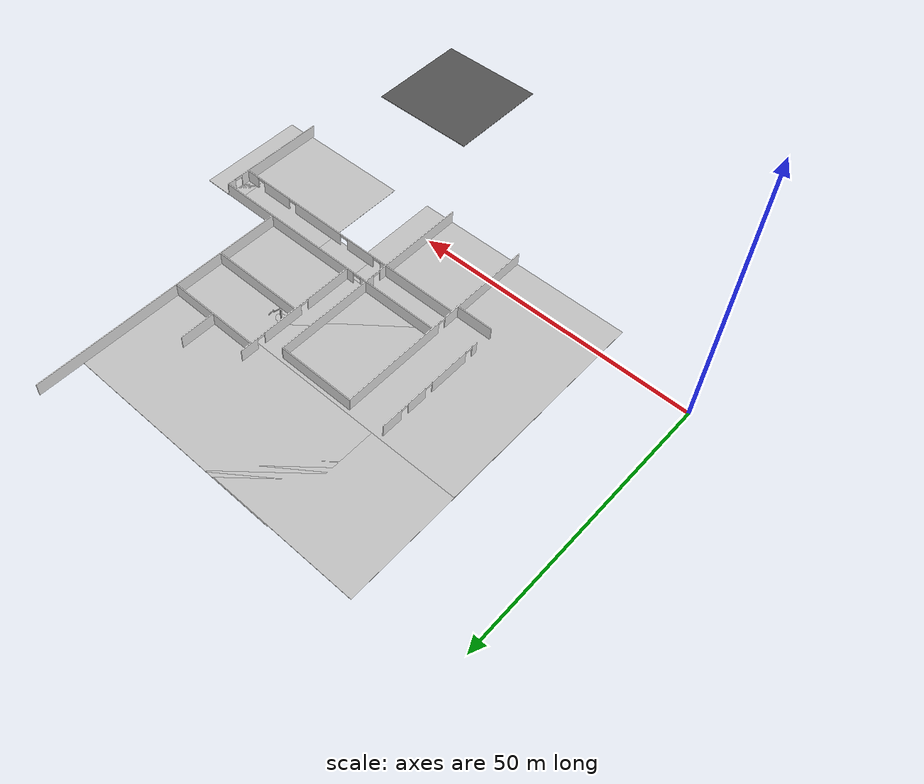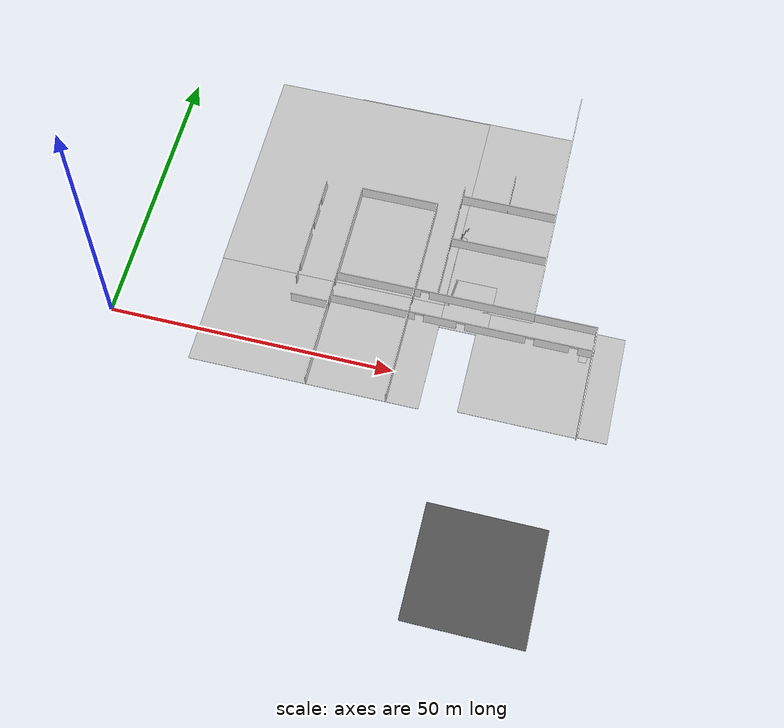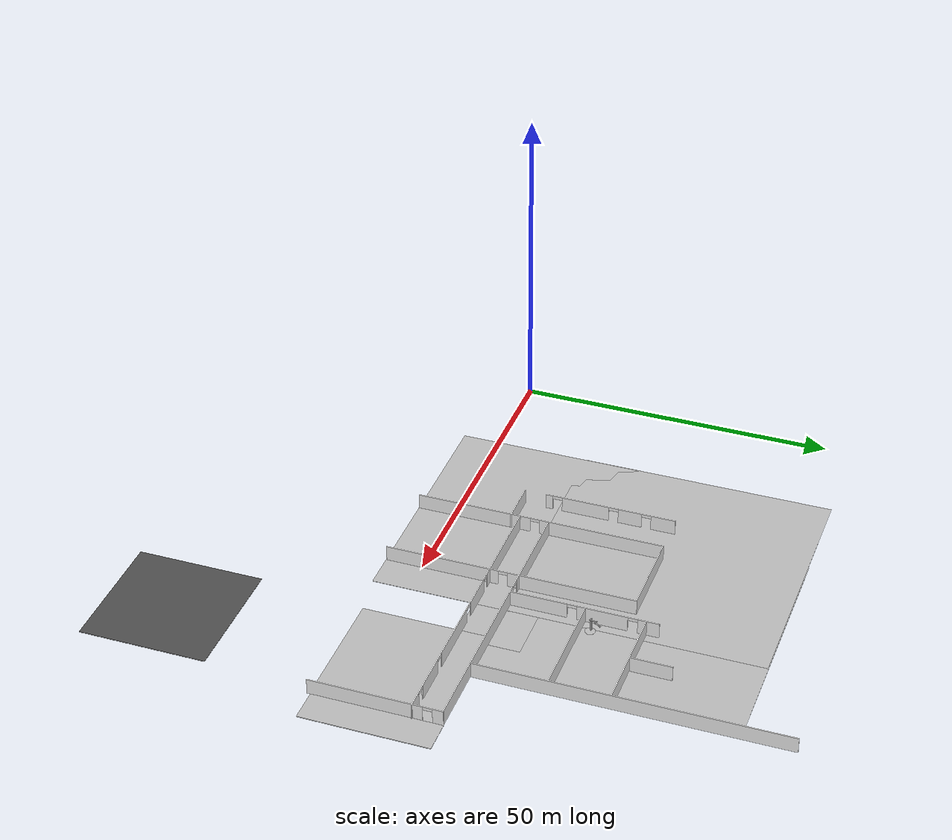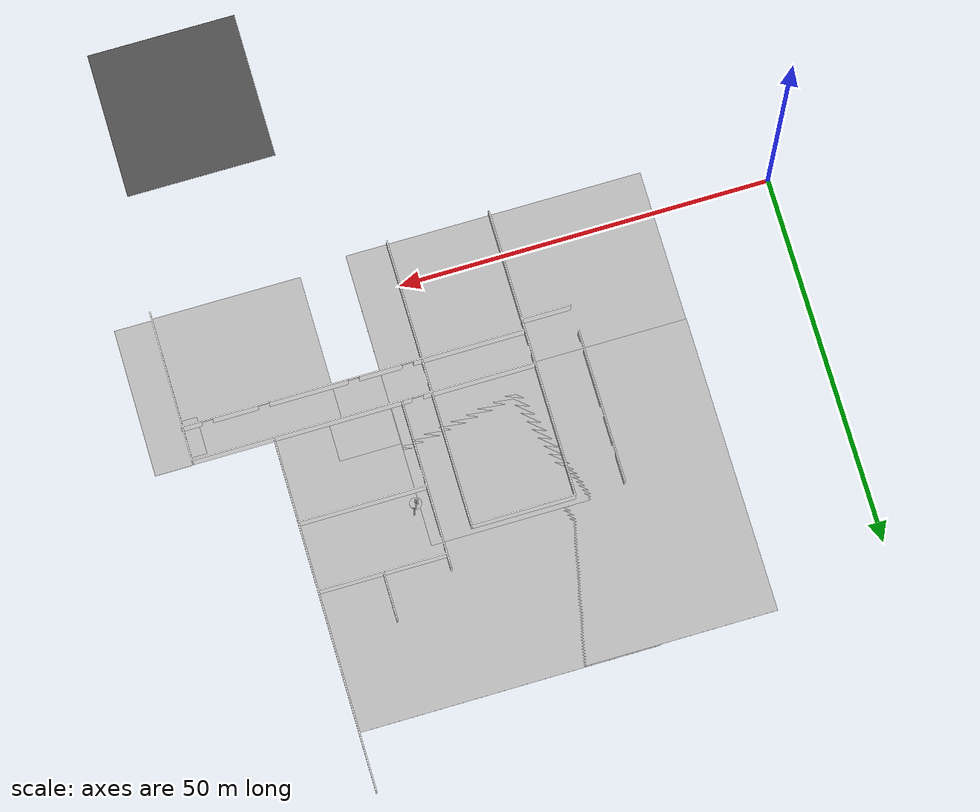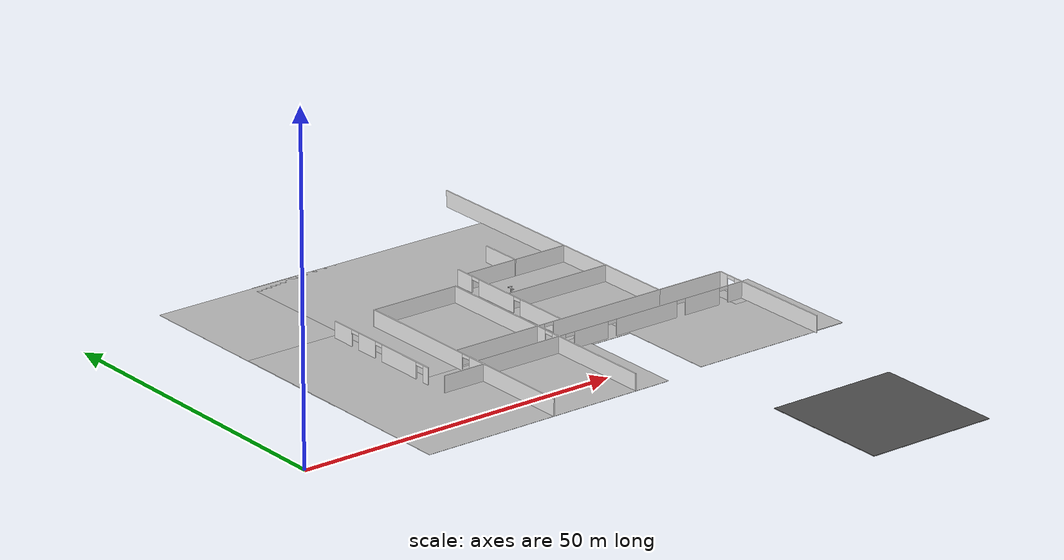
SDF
<sdf version="1.6">
 <world name="default">
  <model name="mainoffice">
   <pose>42.7555 15.4488 0 0 -0 0</pose>
   <link name="Wall_102">
    <collision name="Wall_102_Collision">
     <geometry><box><size>14 0.15 2.5</size></box></geometry>
     <pose>0 0 1.25 0 -0 0</pose>
    </collision>
    <visual name="Wall_102_Visual">
     <pose>0 0 1.25 0 -0 0</pose>
     <geometry><box><size>14 0.15 2.5</size></box></geometry>
     <material>
      <script>
       <uri>model://office_env/materials/scripts</uri>
       <uri>model://office_env/materials/textures</uri>
       <name>wall</name>
      </script>
      <ambient>1 1 1 1</ambient>
     </material>
    </visual>
    <pose>0.425907 17.975 0 0 -0 0</pose>
   </link>
   <link name="Wall_103">
    <pose>7.35091 -1.575 0 0 0 -1.5708</pose>
    <visual name="Wall_103_Visual_0">
     <pose>-9.6287 0 1.25 0 -0 0</pose>
     <geometry><box><size>19.9926 0.15 2.5</size></box></geometry>
     <material>
      <script>
       <uri>model://office_env/materials/scripts</uri>
       <uri>model://office_env/materials/textures</uri>
       <name>wall</name>
      </script>
      <ambient>1 1 1 1</ambient>
     </material>
    </visual>
    <collision name="Wall_103_Collision_0">
     <geometry><box><size>19.9926 0.15 2.5</size></box></geometry>
     <pose>-9.6287 0 1.25 0 -0 0</pose>
    </collision>
    <visual name="Wall_103_Visual_1">
     <pose>10.7463 0 1.25 0 -0 0</pose>
     <geometry><box><size>17.7574 0.15 2.5</size></box></geometry>
     <material>
      <script>
       <uri>model://office_env/materials/scripts</uri>
       <uri>model://office_env/materials/textures</uri>
       <name>wall</name>
      </script>
      <ambient>1 1 1 1</ambient>
     </material>
    </visual>
    <collision name="Wall_103_Collision_1">
     <geometry><box><size>17.7574 0.15 2.5</size></box></geometry>
     <pose>10.7463 0 1.25 0 -0 0</pose>
    </collision>
    <visual name="Wall_103_Visual_2">
     <pose>1.1176 0 2.25 0 -0 0</pose>
     <geometry><box><size>1.5 0.15 0.5</size></box></geometry>
     <material>
      <script>
       <uri>model://office_env/materials/scripts</uri>
       <uri>model://office_env/materials/textures</uri>
       <name>wall</name>
      </script>
      <ambient>1 1 1 1</ambient>
     </material>
    </visual>
    <collision name="Wall_103_Collision_2">
     <geometry><box><size>1.5 0.15 0.5</size></box></geometry>
     <pose>1.1176 0 2.25 0 -0 0</pose>
    </collision>
   </link>
   <link name="Wall_108">
    <pose>11.0759 -0.175002 0 0 -0 3.14159</pose>
    <visual name="Wall_108_Visual_0">
     <pose>-8.20991 0 1.25 0 -0 0</pose>
     <geometry><box><size>18.5802 0.15 2.5</size></box></geometry>
     <material>
      <script>
       <uri>model://office_env/materials/scripts</uri>
       <uri>model://office_env/materials/textures</uri>
       <name>wall</name>
      </script>
      <ambient>1 1 1 1</ambient>
     </material>
    </visual>
    <collision name="Wall_108_Collision_0">
     <geometry><box><size>18.5802 0.15 2.5</size></box></geometry>
     <pose>-8.20991 0 1.25 0 -0 0</pose>
    </collision>
    <visual name="Wall_108_Visual_1">
     <pose>10.0401 0 1.25 0 -0 0</pose>
     <geometry><box><size>14.9198 0.15 2.5</size></box></geometry>
     <material>
      <script>
       <uri>model://office_env/materials/scripts</uri>
       <uri>model://office_env/materials/textures</uri>
       <name>wall</name>
      </script>
      <ambient>1 1 1 1</ambient>
     </material>
    </visual>
    <collision name="Wall_108_Collision_1">
     <geometry><box><size>14.9198 0.15 2.5</size></box></geometry>
     <pose>10.0401 0 1.25 0 -0 0</pose>
    </collision>
    <visual name="Wall_108_Visual_2">
     <pose>1.83018 0 2.25 0 -0 0</pose>
     <geometry><box><size>1.5 0.15 0.5</size></box></geometry>
     <material>
      <script>
       <uri>model://office_env/materials/scripts</uri>
       <uri>model://office_env/materials/textures</uri>
       <name>wall</name>
      </script>
      <ambient>1 1 1 1</ambient>
     </material>
    </visual>
    <collision name="Wall_108_Collision_2">
     <geometry><box><size>1.5 0.15 0.5</size></box></geometry>
     <pose>1.83018 0 2.25 0 -0 0</pose>
    </collision>
   </link>
   <link name="Wall_112">
    <pose>16.5456 -4.78754 0 0 -0 3.14159</pose>
    <visual name="Wall_112_Visual_0">
     <pose>-21.6387 0 1.25 0 -0 0</pose>
     <geometry><box><size>2.72252 0.15 2.5</size></box></geometry>
     <material>
      <script>
       <uri>model://office_env/materials/scripts</uri>
       <uri>model://office_env/materials/textures</uri>
       <name>wall</name>
      </script>
      <ambient>1 1 1 1</ambient>
     </material>
    </visual>
    <collision name="Wall_112_Collision_0">
     <geometry><box><size>2.72252 0.15 2.5</size></box></geometry>
     <pose>-21.6387 0 1.25 0 -0 0</pose>
    </collision>
    <visual name="Wall_112_Visual_1">
     <pose>-15.759 0 1.25 0 -0 0</pose>
     <geometry><box><size>6.03688 0.15 2.5</size></box></geometry>
     <material>
      <script>
       <uri>model://office_env/materials/scripts</uri>
       <uri>model://office_env/materials/textures</uri>
       <name>wall</name>
      </script>
      <ambient>1 1 1 1</ambient>
     </material>
    </visual>
    <collision name="Wall_112_Collision_1">
     <geometry><box><size>6.03688 0.15 2.5</size></box></geometry>
     <pose>-15.759 0 1.25 0 -0 0</pose>
    </collision>
    <visual name="Wall_112_Visual_2">
     <pose>-5.98902 0 1.25 0 -0 0</pose>
     <geometry><box><size>10.5032 0.15 2.5</size></box></geometry>
     <material>
      <script>
       <uri>model://office_env/materials/scripts</uri>
       <uri>model://office_env/materials/textures</uri>
       <name>wall</name>
      </script>
      <ambient>1 1 1 1</ambient>
     </material>
    </visual>
    <collision name="Wall_112_Collision_2">
     <geometry><box><size>10.5032 0.15 2.5</size></box></geometry>
     <pose>-5.98902 0 1.25 0 -0 0</pose>
    </collision>
    <visual name="Wall_112_Visual_3">
     <pose>3.64384 0 1.25 0 -0 0</pose>
     <geometry><box><size>5.76255 0.15 2.5</size></box></geometry>
     <material>
      <script>
       <uri>model://office_env/materials/scripts</uri>
       <uri>model://office_env/materials/textures</uri>
       <name>wall</name>
      </script>
      <ambient>1 1 1 1</ambient>
     </material>
    </visual>
    <collision name="Wall_112_Collision_3">
     <geometry><box><size>5.76255 0.15 2.5</size></box></geometry>
     <pose>3.64384 0 1.25 0 -0 0</pose>
    </collision>
    <visual name="Wall_112_Visual_4">
     <pose>15.5126 0 1.25 0 -0 0</pose>
     <geometry><box><size>14.9749 0.15 2.5</size></box></geometry>
     <material>
      <script>
       <uri>model://office_env/materials/scripts</uri>
       <uri>model://office_env/materials/textures</uri>
       <name>wall</name>
      </script>
      <ambient>1 1 1 1</ambient>
     </material>
    </visual>
    <collision name="Wall_112_Collision_4">
     <geometry><box><size>14.9749 0.15 2.5</size></box></geometry>
     <pose>15.5126 0 1.25 0 -0 0</pose>
    </collision>
    <visual name="Wall_112_Visual_5">
     <pose>-19.5275 0 2.25 0 -0 0</pose>
     <geometry><box><size>1.5 0.15 0.5</size></box></geometry>
     <material>
      <script>
       <uri>model://office_env/materials/scripts</uri>
       <uri>model://office_env/materials/textures</uri>
       <name>wall</name>
      </script>
      <ambient>1 1 1 1</ambient>
     </material>
    </visual>
    <collision name="Wall_112_Collision_5">
     <geometry><box><size>1.5 0.15 0.5</size></box></geometry>
     <pose>-19.5275 0 2.25 0 -0 0</pose>
    </collision>
    <visual name="Wall_112_Visual_6">
     <pose>-11.9906 0 2.25 0 -0 0</pose>
     <geometry><box><size>1.5 0.15 0.5</size></box></geometry>
     <material>
      <script>
       <uri>model://office_env/materials/scripts</uri>
       <uri>model://office_env/materials/textures</uri>
       <name>wall</name>
      </script>
      <ambient>1 1 1 1</ambient>
     </material>
    </visual>
    <collision name="Wall_112_Collision_6">
     <geometry><box><size>1.5 0.15 0.5</size></box></geometry>
     <pose>-11.9906 0 2.25 0 -0 0</pose>
    </collision>
    <visual name="Wall_112_Visual_7">
     <pose>0.01256 0 2.25 0 -0 0</pose>
     <geometry><box><size>1.5 0.15 0.5</size></box></geometry>
     <material>
      <script>
       <uri>model://office_env/materials/scripts</uri>
       <uri>model://office_env/materials/textures</uri>
       <name>wall</name>
      </script>
      <ambient>1 1 1 1</ambient>
     </material>
    </visual>
    <collision name="Wall_112_Collision_7">
     <geometry><box><size>1.5 0.15 0.5</size></box></geometry>
     <pose>0.01256 0 2.25 0 -0 0</pose>
    </collision>
    <visual name="Wall_112_Visual_8">
     <pose>7.27511 0 2.25 0 -0 0</pose>
     <geometry><box><size>1.5 0.15 0.5</size></box></geometry>
     <material>
      <script>
       <uri>model://office_env/materials/scripts</uri>
       <uri>model://office_env/materials/textures</uri>
       <name>wall</name>
      </script>
      <ambient>1 1 1 1</ambient>
     </material>
    </visual>
    <collision name="Wall_112_Collision_8">
     <geometry><box><size>1.5 0.15 0.5</size></box></geometry>
     <pose>7.27511 0 2.25 0 -0 0</pose>
    </collision>
   </link>
   <link name="Wall_115">
    <pose>11.3794 11.2815 0 0 0 -1.5708</pose>
    <visual name="Wall_115_Visual_0">
     <pose>-9.73453 0 1.25 0 -0 0</pose>
     <geometry><box><size>3.28094 0.15 2.5</size></box></geometry>
     <material>
      <script>
       <uri>model://office_env/materials/scripts</uri>
       <uri>model://office_env/materials/textures</uri>
       <name>wall</name>
      </script>
      <ambient>1 1 1 1</ambient>
     </material>
    </visual>
    <collision name="Wall_115_Collision_0">
     <geometry><box><size>3.28094 0.15 2.5</size></box></geometry>
     <pose>-9.73453 0 1.25 0 -0 0</pose>
    </collision>
    <visual name="Wall_115_Visual_1">
     <pose>-2.73819 0 1.25 0 -0 0</pose>
     <geometry><box><size>7.71174 0.15 2.5</size></box></geometry>
     <material>
      <script>
       <uri>model://office_env/materials/scripts</uri>
       <uri>model://office_env/materials/textures</uri>
       <name>wall</name>
      </script>
      <ambient>1 1 1 1</ambient>
     </material>
    </visual>
    <collision name="Wall_115_Collision_1">
     <geometry><box><size>7.71174 0.15 2.5</size></box></geometry>
     <pose>-2.73819 0 1.25 0 -0 0</pose>
    </collision>
    <visual name="Wall_115_Visual_2">
     <pose>6.99634 0 1.25 0 -0 0</pose>
     <geometry><box><size>8.75732 0.15 2.5</size></box></geometry>
     <material>
      <script>
       <uri>model://office_env/materials/scripts</uri>
       <uri>model://office_env/materials/textures</uri>
       <name>wall</name>
      </script>
      <ambient>1 1 1 1</ambient>
     </material>
    </visual>
    <collision name="Wall_115_Collision_2">
     <geometry><box><size>8.75732 0.15 2.5</size></box></geometry>
     <pose>6.99634 0 1.25 0 -0 0</pose>
    </collision>
    <visual name="Wall_115_Visual_3">
     <pose>-7.34406 0 2.25 0 -0 0</pose>
     <geometry><box><size>1.5 0.15 0.5</size></box></geometry>
     <material>
      <script>
       <uri>model://office_env/materials/scripts</uri>
       <uri>model://office_env/materials/textures</uri>
       <name>wall</name>
      </script>
      <ambient>1 1 1 1</ambient>
     </material>
    </visual>
    <collision name="Wall_115_Collision_3">
     <geometry><box><size>1.5 0.15 0.5</size></box></geometry>
     <pose>-7.34406 0 2.25 0 -0 0</pose>
    </collision>
    <visual name="Wall_115_Visual_4">
     <pose>1.86768 0 2.25 0 -0 0</pose>
     <geometry><box><size>1.5 0.15 0.5</size></box></geometry>
     <material>
      <script>
       <uri>model://office_env/materials/scripts</uri>
       <uri>model://office_env/materials/textures</uri>
       <name>wall</name>
      </script>
      <ambient>1 1 1 1</ambient>
     </material>
    </visual>
    <collision name="Wall_115_Collision_4">
     <geometry><box><size>1.5 0.15 0.5</size></box></geometry>
     <pose>1.86768 0 2.25 0 -0 0</pose>
    </collision>
   </link>
   <link name="Wall_122">
    <collision name="Wall_122_Collision">
     <geometry><box><size>47.5 0.15 2.5</size></box></geometry>
     <pose>0 0 1.25 0 -0 0</pose>
    </collision>
    <visual name="Wall_122_Visual">
     <pose>0 0 1.25 0 -0 0</pose>
     <geometry><box><size>47.5 0.15 2.5</size></box></geometry>
     <material>
      <script>
       <uri>model://office_env/materials/scripts</uri>
       <uri>model://office_env/materials/textures</uri>
       <name>wall</name>
      </script>
      <ambient>1 1 1 1</ambient>
     </material>
    </visual>
    <pose>28.4509 23.65 0 0 0 -1.5708</pose>
   </link>
   <link name="Wall_146">
    <collision name="Wall_146_Collision">
     <geometry><box><size>17 0.15 2.5</size></box></geometry>
     <pose>0 0 1.25 0 -0 0</pose>
    </collision>
    <visual name="Wall_146_Visual">
     <pose>0 0 1.25 0 -0 0</pose>
     <geometry><box><size>17 0.15 2.5</size></box></geometry>
     <material>
      <script>
       <uri>model://office_env/materials/scripts</uri>
       <uri>model://office_env/materials/textures</uri>
       <name>wall</name>
      </script>
      <ambient>1 1 1 1</ambient>
     </material>
    </visual>
    <pose>19.9197 20.665 0 0 -0 0</pose>
   </link>
   <link name="Wall_148">
    <collision name="Wall_148_Collision">
     <geometry><box><size>6.5 0.15 2.5</size></box></geometry>
     <pose>0 0 1.25 0 -0 0</pose>
    </collision>
    <visual name="Wall_148_Visual">
     <pose>0 0 1.25 0 -0 0</pose>
     <geometry><box><size>6.5 0.15 2.5</size></box></geometry>
     <material>
      <script>
       <uri>model://office_env/materials/scripts</uri>
       <uri>model://office_env/materials/textures</uri>
       <name>wall</name>
      </script>
      <ambient>1 1 1 1</ambient>
     </material>
    </visual>
    <pose>19.8285 23.84 0 0 -0 1.5708</pose>
   </link>
   <link name="Wall_156">
    <collision name="Wall_156_Collision">
     <geometry><box><size>17 0.15 2.5</size></box></geometry>
     <pose>0 0 1.25 0 -0 0</pose>
    </collision>
    <visual name="Wall_156_Visual">
     <pose>0 0 1.25 0 -0 0</pose>
     <geometry><box><size>17 0.15 2.5</size></box></geometry>
     <material>
      <script>
       <uri>model://office_env/materials/scripts</uri>
       <uri>model://office_env/materials/textures</uri>
       <name>wall</name>
      </script>
      <ambient>1 1 1 1</ambient>
     </material>
    </visual>
    <pose>19.9286 11.4108 0 0 -0 0</pose>
   </link>
   <link name="Wall_42">
    <collision name="Wall_42_Collision">
     <geometry><box><size>11 0.15 2.5</size></box></geometry>
     <pose>0 0 1.25 0 -0 0</pose>
    </collision>
    <visual name="Wall_42_Visual">
     <pose>0 0 1.25 0 -0 0</pose>
     <geometry><box><size>11 0.15 2.5</size></box></geometry>
     <material>
      <script>
       <uri>model://office_env/materials/scripts</uri>
       <uri>model://office_env/materials/textures</uri>
       <name>wall</name>
      </script>
      <ambient>1 1 1 1</ambient>
     </material>
    </visual>
    <pose>33.9259 -0.175002 0 0 -0 0</pose>
   </link>
   <link name="Wall_43">
    <pose>39.3509 -10.35 0 0 0 -1.5708</pose>
    <visual name="Wall_43_Visual_0">
     <pose>-9.42687 0 1.25 0 -0 0</pose>
     <geometry><box><size>1.64626 0.15 2.5</size></box></geometry>
     <material>
      <script>
       <uri>model://office_env/materials/scripts</uri>
       <uri>model://office_env/materials/textures</uri>
       <name>wall</name>
      </script>
      <ambient>1 1 1 1</ambient>
     </material>
    </visual>
    <collision name="Wall_43_Collision_0">
     <geometry><box><size>1.64626 0.15 2.5</size></box></geometry>
     <pose>-9.42687 0 1.25 0 -0 0</pose>
    </collision>
    <visual name="Wall_43_Visual_1">
     <pose>1.57313 0 1.25 0 -0 0</pose>
     <geometry><box><size>17.3537 0.15 2.5</size></box></geometry>
     <material>
      <script>
       <uri>model://office_env/materials/scripts</uri>
       <uri>model://office_env/materials/textures</uri>
       <name>wall</name>
      </script>
      <ambient>1 1 1 1</ambient>
     </material>
    </visual>
    <collision name="Wall_43_Collision_1">
     <geometry><box><size>17.3537 0.15 2.5</size></box></geometry>
     <pose>1.57313 0 1.25 0 -0 0</pose>
    </collision>
    <visual name="Wall_43_Visual_2">
     <pose>-7.85374 0 2.25 0 -0 0</pose>
     <geometry><box><size>1.5 0.15 0.5</size></box></geometry>
     <material>
      <script>
       <uri>model://office_env/materials/scripts</uri>
       <uri>model://office_env/materials/textures</uri>
       <name>wall</name>
      </script>
      <ambient>1 1 1 1</ambient>
     </material>
    </visual>
    <collision name="Wall_43_Collision_2">
     <geometry><box><size>1.5 0.15 0.5</size></box></geometry>
     <pose>-7.85374 0 2.25 0 -0 0</pose>
    </collision>
   </link>
   <link name="Wall_77">
    <pose>-6.49909 -1.675 0 0 -0 1.5708</pose>
    <visual name="Wall_77_Visual_0">
     <pose>-10.5358 0 1.25 0 -0 0</pose>
     <geometry><box><size>18.1784 0.15 2.5</size></box></geometry>
     <material>
      <script>
       <uri>model://office_env/materials/scripts</uri>
       <uri>model://office_env/materials/textures</uri>
       <name>wall</name>
      </script>
      <ambient>1 1 1 1</ambient>
     </material>
    </visual>
    <collision name="Wall_77_Collision_0">
     <geometry><box><size>18.1784 0.15 2.5</size></box></geometry>
     <pose>-10.5358 0 1.25 0 -0 0</pose>
    </collision>
    <visual name="Wall_77_Visual_1">
     <pose>9.83921 0 1.25 0 -0 0</pose>
     <geometry><box><size>19.5716 0.15 2.5</size></box></geometry>
     <material>
      <script>
       <uri>model://office_env/materials/scripts</uri>
       <uri>model://office_env/materials/textures</uri>
       <name>wall</name>
      </script>
      <ambient>1 1 1 1</ambient>
     </material>
    </visual>
    <collision name="Wall_77_Collision_1">
     <geometry><box><size>19.5716 0.15 2.5</size></box></geometry>
     <pose>9.83921 0 1.25 0 -0 0</pose>
    </collision>
    <visual name="Wall_77_Visual_2">
     <pose>-0.696588 0 2.25 0 -0 0</pose>
     <geometry><box><size>1.5 0.15 0.5</size></box></geometry>
     <material>
      <script>
       <uri>model://office_env/materials/scripts</uri>
       <uri>model://office_env/materials/textures</uri>
       <name>wall</name>
      </script>
      <ambient>1 1 1 1</ambient>
     </material>
    </visual>
    <collision name="Wall_77_Collision_2">
     <geometry><box><size>1.5 0.15 0.5</size></box></geometry>
     <pose>-0.696588 0 2.25 0 -0 0</pose>
    </collision>
   </link>
   <link name="Wall_83">
    <collision name="Wall_83_Collision">
     <geometry><box><size>6.75 0.15 2.5</size></box></geometry>
     <pose>0 0 1.25 0 -0 0</pose>
    </collision>
    <visual name="Wall_83_Visual">
     <pose>0 0 1.25 0 -0 0</pose>
     <geometry><box><size>6.75 0.15 2.5</size></box></geometry>
     <material>
      <script>
       <uri>model://office_env/materials/scripts</uri>
       <uri>model://office_env/materials/textures</uri>
       <name>wall</name>
      </script>
      <ambient>1 1 1 1</ambient>
     </material>
    </visual>
    <pose>-9.72161 -6.1975 0 0 -0 0</pose>
   </link>
   <link name="Wall_86">
    <pose>-13.0991 7.625 0 0 -0 1.5708</pose>
    <visual name="Wall_86_Visual_0">
     <pose>-9.82339 0 1.25 0 -0 0</pose>
     <geometry><box><size>1.10323 0.15 2.5</size></box></geometry>
     <material>
      <script>
       <uri>model://office_env/materials/scripts</uri>
       <uri>model://office_env/materials/textures</uri>
       <name>wall</name>
      </script>
      <ambient>1 1 1 1</ambient>
     </material>
    </visual>
    <collision name="Wall_86_Collision_0">
     <geometry><box><size>1.10323 0.15 2.5</size></box></geometry>
     <pose>-9.82339 0 1.25 0 -0 0</pose>
    </collision>
    <visual name="Wall_86_Visual_1">
     <pose>-3.99947 0 1.25 0 -0 0</pose>
     <geometry><box><size>7.5446 0.15 2.5</size></box></geometry>
     <material>
      <script>
       <uri>model://office_env/materials/scripts</uri>
       <uri>model://office_env/materials/textures</uri>
       <name>wall</name>
      </script>
      <ambient>1 1 1 1</ambient>
     </material>
    </visual>
    <collision name="Wall_86_Collision_1">
     <geometry><box><size>7.5446 0.15 2.5</size></box></geometry>
     <pose>-3.99947 0 1.25 0 -0 0</pose>
    </collision>
    <visual name="Wall_86_Visual_2">
     <pose>3.13776 0 1.25 0 -0 0</pose>
     <geometry><box><size>3.72987 0.15 2.5</size></box></geometry>
     <material>
      <script>
       <uri>model://office_env/materials/scripts</uri>
       <uri>model://office_env/materials/textures</uri>
       <name>wall</name>
      </script>
      <ambient>1 1 1 1</ambient>
     </material>
    </visual>
    <collision name="Wall_86_Collision_2">
     <geometry><box><size>3.72987 0.15 2.5</size></box></geometry>
     <pose>3.13776 0 1.25 0 -0 0</pose>
    </collision>
    <visual name="Wall_86_Visual_3">
     <pose>8.43885 0 1.25 0 -0 0</pose>
     <geometry><box><size>3.8723 0.15 2.5</size></box></geometry>
     <material>
      <script>
       <uri>model://office_env/materials/scripts</uri>
       <uri>model://office_env/materials/textures</uri>
       <name>wall</name>
      </script>
      <ambient>1 1 1 1</ambient>
     </material>
    </visual>
    <collision name="Wall_86_Collision_3">
     <geometry><box><size>3.8723 0.15 2.5</size></box></geometry>
     <pose>8.43885 0 1.25 0 -0 0</pose>
    </collision>
    <visual name="Wall_86_Visual_4">
     <pose>-8.52177 0 2.25 0 -0 0</pose>
     <geometry><box><size>1.5 0.15 0.5</size></box></geometry>
     <material>
      <script>
       <uri>model://office_env/materials/scripts</uri>
       <uri>model://office_env/materials/textures</uri>
       <name>wall</name>
      </script>
      <ambient>1 1 1 1</ambient>
     </material>
    </visual>
    <collision name="Wall_86_Collision_4">
     <geometry><box><size>1.5 0.15 0.5</size></box></geometry>
     <pose>-8.52177 0 2.25 0 -0 0</pose>
    </collision>
    <visual name="Wall_86_Visual_5">
     <pose>0.522826 0 2.25 0 -0 0</pose>
     <geometry><box><size>1.5 0.15 0.5</size></box></geometry>
     <material>
      <script>
       <uri>model://office_env/materials/scripts</uri>
       <uri>model://office_env/materials/textures</uri>
       <name>wall</name>
      </script>
      <ambient>1 1 1 1</ambient>
     </material>
    </visual>
    <collision name="Wall_86_Collision_5">
     <geometry><box><size>1.5 0.15 0.5</size></box></geometry>
     <pose>0.522826 0 2.25 0 -0 0</pose>
    </collision>
    <visual name="Wall_86_Visual_6">
     <pose>5.7527 0 2.25 0 -0 0</pose>
     <geometry><box><size>1.5 0.15 0.5</size></box></geometry>
     <material>
      <script>
       <uri>model://office_env/materials/scripts</uri>
       <uri>model://office_env/materials/textures</uri>
       <name>wall</name>
      </script>
      <ambient>1 1 1 1</ambient>
     </material>
    </visual>
    <collision name="Wall_86_Collision_6">
     <geometry><box><size>1.5 0.15 0.5</size></box></geometry>
     <pose>5.7527 0 2.25 0 -0 0</pose>
    </collision>
   </link>
   <static>1</static>
  </model>
  <model name="asphalt_plane">
   <static>1</static>
   <link name="link">
    <collision name="collision"><geometry><box><size>20 20 0.1</size></box></geometry></collision>
    <visual name="visual">
     <cast_shadows>0</cast_shadows>
     <geometry><box><size>20 20 0.1</size></box></geometry>
     <material>
      <script>
       <uri>model://asphalt_plane/materials/scripts</uri>
       <uri>model://asphalt_plane/materials/textures</uri>
       <name>vrc/asphalt</name>
      </script>
     </material>
    </visual>
   </link>
   <pose>70.7475 -31.5972 0 0 -0 0</pose>
  </model>
  <model name="double_pendulum_with_base">
   <link name="base">
    <inertial>
     <mass>100</mass>
     <inertia><ixx>1</ixx><ixy>0</ixy><ixz>0</ixz><iyy>1</iyy><iyz>0</iyz><izz>1</izz></inertia>
    </inertial>
    <visual name="vis_plate_on_ground">
     <pose>0 0 0.01 0 -0 0</pose>
     <geometry><cylinder><radius>0.8</radius><length>0.02</length></cylinder></geometry>
     <material>
      <script>
       <uri>model://office_env/materials/scripts</uri>
       <uri>model://office_env/materials/textures</uri>
       <name>wall</name>
      </script>
     </material>
    </visual>
    <visual name="vis_pole">
     <pose>-0.275 0 1.1 0 -0 0</pose>
     <geometry><box><size>0.2 0.2 2.2</size></box></geometry>
     <material>
      <script>
       <uri>model://office_env/materials/scripts</uri>
       <uri>model://office_env/materials/textures</uri>
       <name>wall</name>
      </script>
     </material>
    </visual>
    <collision name="col_plate_on_ground">
     <pose>0 0 0.01 0 -0 0</pose>
     <geometry><cylinder><radius>0.8</radius><length>0.02</length></cylinder></geometry>
    </collision>
    <collision name="col_pole">
     <pose>-0.275 0 1.1 0 -0 0</pose>
     <geometry><box><size>0.2 0.2 2.2</size></box></geometry>
    </collision>
   </link>
   <link name="upper_link">
    <pose>0 0 2.1 -1.5708 0 0</pose>
    <inertial>
     <pose>0 0 0.5 0 -0 0</pose>
     <inertia><ixx>1</ixx><ixy>0</ixy><ixz>0</ixz><iyy>1</iyy><iyz>0</iyz><izz>1</izz></inertia>
     <mass>1</mass>
    </inertial>
    <visual name="vis_upper_joint">
     <pose>-0.05 0 0 3.14159 1.57079 3.14159</pose>
     <geometry><cylinder><radius>0.1</radius><length>0.3</length></cylinder></geometry>
     <material>
      <script>
       <uri>model://office_env/materials/scripts</uri>
       <uri>model://office_env/materials/textures</uri>
       <name>wall</name>
      </script>
     </material>
    </visual>
    <visual name="vis_lower_joint">
     <pose>0 0 1 3.14159 1.57079 3.14159</pose>
     <geometry><cylinder><radius>0.1</radius><length>0.2</length></cylinder></geometry>
     <material>
      <script>
       <uri>model://office_env/materials/scripts</uri>
       <uri>model://office_env/materials/textures</uri>
       <name>wall</name>
      </script>
     </material>
    </visual>
    <visual name="vis_cylinder">
     <pose>0 0 0.5 0 -0 0</pose>
     <geometry><cylinder><radius>0.1</radius><length>0.9</length></cylinder></geometry>
     <material>
      <script>
       <uri>model://office_env/materials/scripts</uri>
       <uri>model://office_env/materials/textures</uri>
       <name>wall</name>
      </script>
     </material>
    </visual>
    <collision name="col_upper_joint">
     <pose>-0.05 0 0 3.14159 1.57079 3.14159</pose>
     <geometry><cylinder><radius>0.1</radius><length>0.3</length></cylinder></geometry>
    </collision>
    <collision name="col_lower_joint">
     <pose>0 0 1 3.14159 1.57079 3.14159</pose>
     <geometry><cylinder><radius>0.1</radius><length>0.2</length></cylinder></geometry>
    </collision>
    <collision name="col_cylinder">
     <pose>0 0 0.5 0 -0 0</pose>
     <geometry><cylinder><radius>0.1</radius><length>0.9</length></cylinder></geometry>
    </collision>
   </link>
   <link name="lower_link">
    <pose>0.25 1 2.1 -2 0 0</pose>
    <inertial>
     <pose>0 0 0.5 0 -0 0</pose>
     <inertia><ixx>1</ixx><ixy>0</ixy><ixz>0</ixz><iyy>1</iyy><iyz>0</iyz><izz>1</izz></inertia>
     <mass>1</mass>
    </inertial>
    <visual name="vis_lower_joint">
     <pose>0 0 0 3.14159 1.57079 3.14159</pose>
     <geometry><cylinder><radius>0.08</radius><length>0.3</length></cylinder></geometry>
     <material>
      <script>
       <uri>model://office_env/materials/scripts</uri>
       <uri>model://office_env/materials/textures</uri>
       <name>wall</name>
      </script>
     </material>
    </visual>
    <visual name="vis_cylinder">
     <pose>0 0 0.5 0 -0 0</pose>
     <geometry><cylinder><radius>0.1</radius><length>0.9</length></cylinder></geometry>
     <material>
      <script>
       <uri>model://office_env/materials/scripts</uri>
       <uri>model://office_env/materials/textures</uri>
       <name>wall</name>
      </script>
     </material>
    </visual>
    <collision name="col_lower_joint">
     <pose>0 0 0 3.14159 1.57079 3.14159</pose>
     <geometry><cylinder><radius>0.08</radius><length>0.3</length></cylinder></geometry>
    </collision>
    <collision name="col_cylinder">
     <pose>0 0 0.5 0 -0 0</pose>
     <geometry><cylinder><radius>0.1</radius><length>0.9</length></cylinder></geometry>
    </collision>
   </link>
   <joint name="upper_joint" type="revolute">
    <parent>base</parent>
    <child>upper_link</child>
    <axis>
     <xyz>1 0 0</xyz>
     <use_parent_model_frame>1</use_parent_model_frame>
     <limit><lower>-1e+16</lower><upper>1e+16</upper></limit>
     <dynamics><spring_reference>0</spring_reference><spring_stiffness>0</spring_stiffness></dynamics>
    </axis>
   </joint>
   <joint name="lower_joint" type="revolute">
    <parent>upper_link</parent>
    <child>lower_link</child>
    <axis>
     <xyz>1 0 0</xyz>
     <use_parent_model_frame>1</use_parent_model_frame>
     <limit><lower>-1e+16</lower><upper>1e+16</upper></limit>
     <dynamics><spring_reference>0</spring_reference><spring_stiffness>0</spring_stiffness></dynamics>
    </axis>
   </joint>
   <pose>56.0857 28.2754 0.034989 3e-05 -0 -0.194647</pose>
  </model>
  <model name="Floor_27">
   <link name="main">
    <pose>0 0 0.01 0 -0 0</pose>
    <collision name="main_Collision"><geometry><box><size>40 40 0.05</size></box></geometry></collision>
    <visual name="main_Visual">
     <geometry><box><size>40 40 0.05</size></box></geometry>
     <material>
      <script>
       <uri>model://Floor_large/materials/scripts</uri>
       <uri>model://Floor_large/materials/textures</uri>
       <name>floor</name>
      </script>
     </material>
    </visual>
   </link>
   <static>1</static>
   <pose>51.1337 34.7935 0 0 -0 0</pose>
  </model>
  <model name="Floor_28">
   <link name="main">
    <pose>0 0 0.01 0 -0 0</pose>
    <collision name="main_Collision"><geometry><box><size>40 40 0.05</size></box></geometry></collision>
    <visual name="main_Visual">
     <geometry><box><size>40 40 0.05</size></box></geometry>
     <material>
      <script>
       <uri>model://Floor_large/materials/scripts</uri>
       <uri>model://Floor_large/materials/textures</uri>
       <name>floor</name>
      </script>
     </material>
    </visual>
   </link>
   <static>1</static>
   <pose>35.6092 34.6684 0 0 -0 0</pose>
  </model>
  <model name="Floor_29">
   <link name="main">
    <pose>0 0 0.01 0 -0 0</pose>
    <collision name="main_Collision"><geometry><box><size>40 40 0.05</size></box></geometry></collision>
    <visual name="main_Visual">
     <geometry><box><size>40 40 0.05</size></box></geometry>
     <material>
      <script>
       <uri>model://Floor_large/materials/scripts</uri>
       <uri>model://Floor_large/materials/textures</uri>
       <name>floor</name>
      </script>
     </material>
    </visual>
   </link>
   <static>1</static>
   <pose>35.6713 14.1423 0 0 -0 0</pose>
  </model>
  <model name="Floor_31">
   <link name="main">
    <pose>0 0 0.01 0 -0 0</pose>
    <collision name="main_Collision"><geometry><box><size>20 20 0.05</size></box></geometry></collision>
    <visual name="main_Visual">
     <geometry><box><size>20 20 0.05</size></box></geometry>
     <material>
      <script>
       <uri>model://Floor_medium/materials/scripts</uri>
       <uri>model://Floor_medium/materials/textures</uri>
       <name>floor</name>
      </script>
     </material>
    </visual>
   </link>
   <static>1</static>
   <pose>72.1138 5.20177 0 0 -0 0</pose>
  </model>
  <model name="Floor_33">
   <link name="main">
    <pose>0 0 0.01 0 -0 0</pose>
    <collision name="main_Collision"><geometry><box><size>10 10 0.05</size></box></geometry></collision>
    <visual name="main_Visual">
     <geometry><box><size>10 10 0.05</size></box></geometry>
     <material>
      <script>
       <uri>model://Floor_small/materials/scripts</uri>
       <uri>model://Floor_small/materials/textures</uri>
       <name>floor</name>
      </script>
     </material>
    </visual>
   </link>
   <static>1</static>
   <pose>58.8887 15.1913 0 0 -0 0</pose>
  </model>
  <model name="outdoor_plane_14">
   <static>1</static>
   <link name="link">
    <collision name="collision"><geometry><box><size>5 20 0.1</size></box></geometry></collision>
    <visual name="visual">
     <cast_shadows>0</cast_shadows>
     <geometry><box><size>5 20 0.1</size></box></geometry>
     <material>
      <script>
       <uri>model://outdoor_plane/materials/scripts</uri>
       <uri>model://outdoor_plane/materials/textures</uri>
       <name>outds/Image</name>
      </script>
     </material>
    </visual>
   </link>
   <pose>84.69 5.3843 0 0 -0 0</pose>
  </model>
  <model name="Floor">
   <link name="main">
    <pose>0 0 0.01 0 -0 0</pose>
    <collision name="main_Collision"><geometry><box><size>5 5 0.05</size></box></geometry></collision>
    <visual name="main_Visual">
     <geometry><box><size>5 5 0.05</size></box></geometry>
     <material>
      <script>
       <uri>model://Floor_verysmall/materials/scripts</uri>
       <uri>model://Floor_verysmall/materials/textures</uri>
       <name>floor</name>
      </script>
     </material>
    </visual>
   </link>
   <static>1</static>
   <pose>82.4986 11.8686 0 0 -0 0</pose>
  </model>
 </world>
</sdf>
